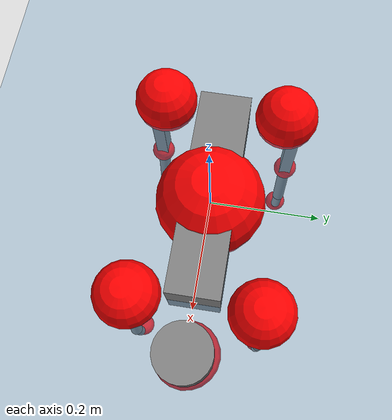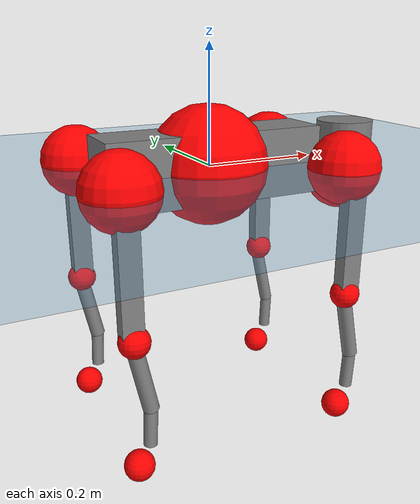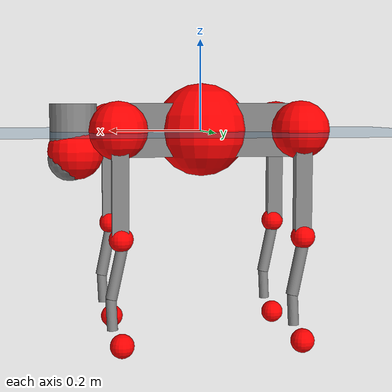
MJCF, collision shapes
<mujoco model="go2">
  <compiler angle="radian" assetdir="assets" balanceinertia="true" inertiafromgeom="false"/>

  <option timestep="0.005" density="1.2" viscosity="2e-05"/>

  <size nkey="1"/>

  <visual>
    <quality shadowsize="8192"/>
    <map shadowclip="0.5"/>
  </visual>

  <default>
    <default class="/">
      <geom contype="0" conaffinity="0" group="1" solref="-1000 -80"/>
      <site size="0.01 0.005 0.005" group="5"/>
      <general forcelimited="true" biastype="affine" gainprm="20" biasprm="0 -20 -0.5"/>
      <default class="go2">
        <joint armature="0.01" damping="0.01" frictionloss="0.2"/>
        <geom condim="1" margin="0.001"/>
        <default class="visual">
          <geom type="mesh" group="2"/>
        </default>
        <default class="collision">
          <geom group="3"/>
          <default class="foot">
            <geom size="0.022 0 0" condim="6" priority="1" friction="0.8 0.02 0.01" solimp="0.015 1 0.022"/>
          </default>
        </default>
        <default class="reward_collision_sphere">
          <geom group="5" rgba="1 0 0 1"/>
        </default>
      </default>
    </default>
  </default>

  <asset>
    <texture type="skybox" colorspace="auto" name="//unnamed_texture_0" builtin="gradient" rgb1="0.95 0.95 0.95" rgb2="0.95 0.95 0.95" width="100" height="600"/>
    <texture type="2d" colorspace="auto" name="texplane" builtin="checker" rgb1="0.345 0.575 0.748" rgb2="0.345 0.575 0.748" markrgb="1 1 1" width="512" height="512"/>
    <material name="MatPlane" class="/" texture="texplane" texuniform="true" texrepeat="2 2" specular="0.9"/>
    <material name="metal" class="/" rgba="0.9 0.95 0.95 1"/>
    <material name="black" class="/" rgba="0 0 0 1"/>
    <material name="white" class="/"/>
    <material name="gray" class="/" rgba="0.671705 0.692426 0.77427 1"/>
    <mesh name="base_0" class="/" file="base_0.obj"/>
    <mesh name="base_1" class="/" file="base_1.obj"/>
    <mesh name="base_2" class="/" file="base_2.obj"/>
    <mesh name="base_3" class="/" file="base_3.obj"/>
    <mesh name="base_4" class="/" file="base_4.obj"/>
    <mesh name="hip_0" class="/" file="hip_0.obj"/>
    <mesh name="hip_1" class="/" file="hip_1.obj"/>
    <mesh name="thigh_0" class="/" file="thigh_0.obj"/>
    <mesh name="thigh_1" class="/" file="thigh_1.obj"/>
    <mesh name="thigh_mirror_0" class="/" file="thigh_mirror_0.obj"/>
    <mesh name="thigh_mirror_1" class="/" file="thigh_mirror_1.obj"/>
    <mesh name="calf_0" class="/" file="calf_0.obj"/>
    <mesh name="calf_1" class="/" file="calf_1.obj"/>
    <mesh name="calf_mirror_0" class="/" file="calf_mirror_0.obj"/>
    <mesh name="calf_mirror_1" class="/" file="calf_mirror_1.obj"/>
    <mesh name="foot" class="/" file="foot.obj"/>
  </asset>

  <worldbody>
    <geom name="floor" class="/" size="100 100 0.125" type="plane" group="0" material="MatPlane"/>
    <light name="toplight_shadow" class="/" pos="0 0 5" dir="0.0990148 0.0990148 -0.990148" type="directional" ambient="0.04 0.04 0.04" diffuse="0.55 0.55 0.55" specular="0.12 0.12 0.12"/>
    <light name="toplight_fill" class="/" pos="0 0 5" dir="0.0990148 0.0990148 -0.990148" type="directional" castshadow="false" ambient="0.04 0.04 0.04" diffuse="0.3 0.3 0.3" specular="0.08 0.08 0.08"/>
    <body name="trunk" childclass="go2" pos="-0.00258079 -0.0002914 0.00243966" quat="1 0.000117375 -0.000610794 0.0007656">
      <inertial pos="0.0253997 0.00176593 -0.00785127" quat="-0.0064768 0.718293 -0.0102565 0.695635" mass="7.12151" diaginertia="0.100368 0.116074 0.0317565"/>
      <joint name="//unnamed_joint_0" type="free" armature="0" damping="0" frictionloss="0"/>
      <geom name="//unnamed_geom_1" class="visual" material="black" mesh="base_0"/>
      <geom name="//unnamed_geom_2" class="visual" material="black" mesh="base_1"/>
      <geom name="//unnamed_geom_3" class="visual" material="black" mesh="base_2"/>
      <geom name="//unnamed_geom_4" class="visual" material="white" mesh="base_3"/>
      <geom name="//unnamed_geom_5" class="visual" material="gray" mesh="base_4"/>
      <geom name="trunk_1" class="collision" size="0.192096 0.0477431 0.0582109" type="box"/>
      <geom name="trunk_2" class="collision" size="0.0510622 0.0459559" pos="0.281315 0 0.0104581" type="cylinder"/>
      <geom name="trunk_3" class="collision" size="0.0479984" pos="0.289211 0 -0.0627485"/>
      <geom name="//unnamed_geom_9" class="reward_collision_sphere" size="0.102124"/>
      <geom name="//unnamed_geom_10" class="reward_collision_sphere" size="0.0612746" pos="0.27638 0 -0.0470614"/>
      <site name="imu" pos="-0.0396722 -0.00109228 0.0584463" size="0.0102124"/>
      <camera name="track" pos="0 -2.0617 0" quat="0.707107 0.707107 0 0" mode="trackcom"/>
      <camera name="ego_camera" pos="0.307966 0 0.0470614" quat="-0.5 -0.5 0.5 0.5"/>
      <body name="FL_hip" pos="0.191403 0.0491799 0.000888164" quat="1 -0.000828178 -0.000388092 -0.000271592">
        <inertial pos="-0.00507713 0.00253865 -0.000866447" quat="0.496205 0.500505 0.505632 0.497606" mass="0.778737" diaginertia="0.000867713 0.000744377 0.000635239"/>
        <joint name="FL_hip_joint" pos="0 0 0" axis="0.999957 0.00898838 0.00220803" range="-1.04894 1.09059" armature="0.0102105" damping="0.0130498" frictionloss="0.200806"/>
        <geom name="//unnamed_geom_11" class="visual" material="metal" mesh="hip_0"/>
        <geom name="//unnamed_geom_12" class="visual" material="gray" mesh="hip_1"/>
        <geom name="//unnamed_geom_13" class="collision" size="0.0469772 0.0204249" pos="0 0.0824681 0" quat="0.707107 0.707107 0 0" type="cylinder"/>
        <geom name="//unnamed_geom_14" class="reward_collision_sphere" size="0.0612746" pos="0 0.0721596 0"/>
        <body name="FL_thigh" pos="-0.00140268 0.0948896 0.00102056" quat="0.999999 -0.000620692 -0.000308725 -0.0010303">
          <inertial pos="-0.00374817 -0.0232723 -0.0328801" quat="0.829526 0.0836599 -0.0164707 0.55192" mass="1.20976" diaginertia="0.00547611 0.00704298 0.00111894"/>
          <joint name="FL_thigh_joint" pos="0 0 0" axis="-0.0056655 0.999946 -0.00871002" range="-1.6111 3.49882" armature="0.0089119" damping="0.00443975" frictionloss="0.192319"/>
          <geom name="//unnamed_geom_15" class="visual" material="metal" mesh="thigh_0"/>
          <geom name="//unnamed_geom_16" class="visual" material="gray" mesh="thigh_1"/>
          <geom name="//unnamed_geom_17" class="collision" size="0.108762 0.0125102 0.0173611" pos="0 0 -0.111379" quat="0.707107 0 0.707107 0" type="box"/>
          <body name="FL_calf" pos="-0.0019721 -0.00222864 -0.224276" quat="0.999999 -0.000646201 -0.000928067 0.000394793">
            <inertial pos="0.0070388 0.00194373 -0.149332" quat="0.710527 0.00390736 -0.00677647 0.703626" mass="0.247205" diaginertia="0.00138049 0.0016822 6.65834e-05"/>
            <joint name="FL_calf_joint" pos="0 0 0" axis="0.00233858 0.999995 -0.00203657" stiffness="0.00905058" range="-2.71313 -0.853344" armature="0.0113838" damping="0.00689485" frictionloss="0.196425"/>
            <geom name="//unnamed_geom_18" class="visual" material="gray" mesh="calf_0"/>
            <geom name="//unnamed_geom_19" class="visual" material="black" mesh="calf_1"/>
            <geom name="FL_calf0" class="collision" size="0.0122549 0.0612746" pos="0.00789656 0 -0.0627485" quat="0.994493 0 -0.104807 0" type="cylinder"/>
            <geom name="//unnamed_geom_21" class="collision" size="0.0112337 0.0331904" pos="0.0197414 0 -0.15478" quat="0.999688 0 0.0249974 0" type="cylinder"/>
            <geom name="//unnamed_geom_22" class="visual" pos="0 0 -0.222757" quat="1 0 0 0" material="black" mesh="foot"/>
            <geom name="FL_foot" class="foot" size="0.0197003" pos="-0.00197414 0 -0.222757"/>
            <geom name="//unnamed_geom_24" class="reward_collision_sphere" size="0.0255311"/>
            <geom name="//unnamed_geom_25" class="reward_collision_sphere" size="0.0255311" pos="-0.00197414 0 -0.222757"/>
            <site name="FL_foot" class="foot" pos="-0.00197414 0 -0.222757" size="0.0102124"/>
          </body>
        </body>
      </body>
      <body name="FR_hip" pos="0.194078 -0.0462038 -0.00198852" quat="1 6.01037e-05 0.000516724 0.000226431">
        <inertial pos="-0.00597975 0.00294749 -0.000707815" quat="0.483771 0.502868 0.504165 0.508829" mass="0.733513" diaginertia="0.000860996 0.0006882 0.000620538"/>
        <joint name="FR_hip_joint" pos="0 0 0" axis="0.999978 -0.00155165 0.00643971" stiffness="0.0125815" range="-1.00347 1.07054" armature="0.00953247" damping="0.0132233" frictionloss="0.228451"/>
        <geom name="//unnamed_geom_26" class="visual" pos="0 -1.30307e-10 -5.58915e-09" quat="4.63268e-05 1 0 0" material="metal" mesh="hip_0"/>
        <geom name="//unnamed_geom_27" class="visual" pos="0 -2.11244e-10 1.38241e-08" quat="4.63268e-05 1 0 0" material="gray" mesh="hip_1"/>
        <geom name="//unnamed_geom_28" class="collision" size="0.0469772 0.0204249" pos="0 -0.0824681 0" quat="0.707107 0.707107 0 0" type="cylinder"/>
        <geom name="//unnamed_geom_29" class="reward_collision_sphere" size="0.0612746" pos="0 -0.0721596 0"/>
        <body name="FR_thigh" pos="0.00134515 -0.0992934 0.00237115" quat="1 -0.000225806 4.80384e-05 -0.00081177">
          <inertial pos="-0.00687964 0.0205861 -0.0352728" quat="0.554225 -0.018205 0.0880277 0.827499" mass="1.1785" diaginertia="0.00536669 0.00671535 0.00102786"/>
          <joint name="FR_thigh_joint" pos="0 0 0" axis="0.00499361 -0.999962 -0.00717237" stiffness="0.000953773" range="-3.44236 1.5187" armature="0.00997658" damping="0.00838042" frictionloss="0.226108"/>
          <geom name="//unnamed_geom_30" class="visual" material="metal" mesh="thigh_mirror_0"/>
          <geom name="//unnamed_geom_31" class="visual" material="gray" mesh="thigh_mirror_1"/>
          <geom name="//unnamed_geom_32" class="collision" size="0.108762 0.0125102 0.0173611" pos="0 0 -0.111379" quat="0.707107 0 0.707107 0" type="box"/>
          <body name="FR_calf" pos="-0.001339 0.000937175 -0.220871" quat="1 -0.000445261 0.000289833 -7.50207e-05">
            <inertial pos="0.00683904 0.000654033 -0.148007" quat="0.693039 -0.0161927 0.00268553 0.720713" mass="0.257738" diaginertia="0.00141935 0.00164584 6.51799e-05"/>
            <joint name="FR_calf_joint" pos="0 0 0" axis="0.00658097 -0.999972 -0.00363889" stiffness="0.0136665" range="0.900433 2.70145" armature="0.00966836" damping="0" frictionloss="0.224295"/>
            <geom name="//unnamed_geom_33" class="visual" material="gray" mesh="calf_mirror_0"/>
            <geom name="//unnamed_geom_34" class="visual" material="black" mesh="calf_mirror_1"/>
            <geom name="FR_calf0" class="collision" size="0.0132762 0.0612746" pos="0.0098707 0 -0.0627485" quat="0.995004 0 -0.0998334 0" type="cylinder"/>
            <geom name="//unnamed_geom_36" class="collision" size="0.0112337 0.0331904" pos="0.0197414 0 -0.15478" quat="0.999688 0 0.0249974 0" type="cylinder"/>
            <geom name="//unnamed_geom_37" class="visual" pos="0 0 -0.222757" quat="1 0 0 0" material="black" mesh="foot"/>
            <geom name="FR_foot" class="foot" size="0.0237123" pos="-0.00197414 0 -0.222757"/>
            <geom name="//unnamed_geom_39" class="reward_collision_sphere" size="0.0255311"/>
            <geom name="//unnamed_geom_40" class="reward_collision_sphere" size="0.0255311" pos="-0.00197414 0 -0.222757"/>
            <site name="FR_foot" class="foot" pos="-0.00197414 0 -0.222757" size="0.0102124"/>
          </body>
        </body>
      </body>
      <body name="RL_hip" pos="-0.192935 0.0475581 0.00234837" quat="1 -0.000103305 9.70056e-05 -2.80657e-05">
        <inertial pos="0.00496716 0.0023985 0.00440703" quat="0.503102 0.495792 0.498855 0.502218" mass="0.690944" diaginertia="0.000746326 0.000645014 0.000566263"/>
        <joint name="RL_hip_joint" pos="0 0 0" axis="-0.999973 -0.00117281 0.00729937" range="-1.03039 1.09381" armature="0.00943924" damping="0.0230256" frictionloss="0.201236"/>
        <geom name="//unnamed_geom_41" class="visual" pos="5.11711e-10 0 1.00307e-07" quat="4.63268e-05 0 1 0" material="metal" mesh="hip_0"/>
        <geom name="//unnamed_geom_42" class="visual" pos="8.29545e-10 0 8.89582e-08" quat="4.63268e-05 0 1 0" material="gray" mesh="hip_1"/>
        <geom name="//unnamed_geom_43" class="collision" size="0.0469772 0.0204249" pos="0 0.0824681 0" quat="0.707107 0.707107 0 0" type="cylinder"/>
        <geom name="//unnamed_geom_44" class="reward_collision_sphere" size="0.0612746" pos="0 0.0721596 0"/>
        <body name="RL_thigh" pos="0.000334694 0.0955316 0.000763017" quat="0.999999 -0.000832838 -0.000392321 -0.000685967">
          <inertial pos="0.000939891 -0.0203209 -0.0307017" quat="0.830113 0.087527 -0.0170808 0.550417" mass="1.19313" diaginertia="0.00586163 0.00680208 0.00113152"/>
          <joint name="RL_thigh_joint" pos="0 0 0" axis="0.0197799 0.999799 -0.00335965" range="-0.55424 4.53074" armature="0.0114636" damping="0.0113453" frictionloss="0.20244"/>
          <geom name="//unnamed_geom_45" class="visual" material="metal" mesh="thigh_0"/>
          <geom name="//unnamed_geom_46" class="visual" material="gray" mesh="thigh_1"/>
          <geom name="//unnamed_geom_47" class="collision" size="0.108762 0.0125102 0.0173611" pos="0 0 -0.111379" quat="0.707107 0 0.707107 0" type="box"/>
          <body name="RL_calf" pos="-0.00169767 0.000896495 -0.225123" quat="1 3.20324e-05 -5.17433e-05 -0.000134445">
            <inertial pos="0.00770503 -0.00277498 -0.150472" quat="0.709123 0.00179334 -0.00720995 0.705045" mass="0.240873" diaginertia="0.00130862 0.00156539 6.45165e-05"/>
            <joint name="RL_calf_joint" pos="0 0 0" axis="-0.00924753 0.999938 0.00627092" stiffness="0.00755116" range="-2.75854 -0.837366" armature="0.00870559" damping="0" frictionloss="0.217884"/>
            <geom name="//unnamed_geom_48" class="visual" material="gray" mesh="calf_0"/>
            <geom name="//unnamed_geom_49" class="visual" material="black" mesh="calf_1"/>
            <geom name="RL_calf0" class="collision" size="0.0132762 0.0612746" pos="0.0098707 0 -0.0627485" quat="0.995004 0 -0.0998334 0" type="cylinder"/>
            <geom name="//unnamed_geom_51" class="collision" size="0.0112337 0.0331904" pos="0.0197414 0 -0.15478" quat="0.999688 0 0.0249974 0" type="cylinder"/>
            <geom name="//unnamed_geom_52" class="visual" pos="0 0 -0.222757" quat="1 0 0 0" material="black" mesh="foot"/>
            <geom name="RL_foot" class="foot" size="0.0209838" pos="-0.00197414 0 -0.222757"/>
            <geom name="//unnamed_geom_54" class="reward_collision_sphere" size="0.0255311"/>
            <geom name="//unnamed_geom_55" class="reward_collision_sphere" size="0.0255311" pos="-0.00197414 0 -0.222757"/>
            <site name="RL_foot" class="foot" pos="-0.00197414 0 -0.222757" size="0.0102124"/>
          </body>
        </body>
      </body>
      <body name="RR_hip" pos="-0.195517 -0.046774 0.00241711" quat="0.999999 -0.000187179 -0.00106129 0.000117592">
        <inertial pos="0.00438751 -0.000571969 0.00322276" quat="0.490081 0.496367 0.518439 0.494633" mass="0.748333" diaginertia="0.00087168 0.000724025 0.000631489"/>
        <joint name="RR_hip_joint" pos="0 0 0" axis="-0.999908 -0.0127395 0.00474174" range="-1.00234 1.07816" armature="0.00903288" damping="0.00292603" frictionloss="0.207915"/>
        <geom name="//unnamed_geom_56" class="visual" pos="-5.10196e-10 -1.30307e-10 1.05896e-07" quat="2.14617e-09 4.63268e-05 4.63268e-05 -1" material="metal" mesh="hip_0"/>
        <geom name="//unnamed_geom_57" class="visual" pos="-8.33294e-10 -2.11244e-10 7.51341e-08" quat="2.14617e-09 4.63268e-05 4.63268e-05 -1" material="gray" mesh="hip_1"/>
        <geom name="//unnamed_geom_58" class="collision" size="0.0469772 0.0204249" pos="0 -0.0824681 0" quat="0.707107 0.707107 0 0" type="cylinder"/>
        <geom name="//unnamed_geom_59" class="reward_collision_sphere" size="0.0612746" pos="0 -0.0721596 0"/>
        <body name="RR_thigh" pos="-0.00363371 -0.0969452 0.00262236" quat="1 0.000673387 0.00011574 -0.000627297">
          <inertial pos="-0.00404173 0.0240846 -0.0316109" quat="0.55116 -0.0201775 0.0856448 0.829747" mass="1.22376" diaginertia="0.00556564 0.00665495 0.00106563"/>
          <joint name="RR_thigh_joint" pos="0 0 0" axis="-0.00225233 -0.999949 -0.00982232" range="-4.51823 0.472506" armature="0.00906164" damping="0.0164184" frictionloss="0.212057"/>
          <geom name="//unnamed_geom_60" class="visual" material="metal" mesh="thigh_mirror_0"/>
          <geom name="//unnamed_geom_61" class="visual" material="gray" mesh="thigh_mirror_1"/>
          <geom name="//unnamed_geom_62" class="collision" size="0.108762 0.0125102 0.0173611" pos="0 0 -0.111379" quat="0.707107 0 0.707107 0" type="box"/>
          <body name="RR_calf" pos="0.00326958 -0.00205188 -0.226075" quat="0.999999 0.000773493 -0.000646129 0.0011052">
            <inertial pos="0.00501924 -0.00121491 -0.14544" quat="0.705285 -0.00265374 0.00247769 0.708915" mass="0.25063" diaginertia="0.00137499 0.00170112 6.48636e-05"/>
            <joint name="RR_calf_joint" pos="0 0 0" axis="0.00958496 -0.99995 -0.00275247" stiffness="0.00851245" range="0.827232 2.67415" armature="0.0103013" damping="0" frictionloss="0.224528"/>
            <geom name="//unnamed_geom_63" class="visual" material="gray" mesh="calf_mirror_0"/>
            <geom name="//unnamed_geom_64" class="visual" material="black" mesh="calf_mirror_1"/>
            <geom name="RR_calf0" class="collision" size="0.0132762 0.0612746" pos="0.0098707 0 -0.0627485" quat="0.995004 0 -0.0998334 0" type="cylinder"/>
            <geom name="//unnamed_geom_66" class="collision" size="0.0112337 0.0331904" pos="0.0197414 0 -0.15478" quat="0.999688 0 0.0249974 0" type="cylinder"/>
            <geom name="//unnamed_geom_67" class="visual" pos="0 0 -0.222757" quat="1 0 0 0" material="black" mesh="foot"/>
            <geom name="RR_foot" class="foot" size="0.0226444" pos="-0.00197414 0 -0.222757"/>
            <geom name="//unnamed_geom_69" class="reward_collision_sphere" size="0.0255311"/>
            <geom name="//unnamed_geom_70" class="reward_collision_sphere" size="0.0255311" pos="-0.00197414 0 -0.222757"/>
            <site name="RR_foot" class="foot" pos="-0.00197414 0 -0.222757" size="0.0102124"/>
          </body>
        </body>
      </body>
    </body>
  </worldbody>

  <contact>
    <pair class="/" geom1="floor" geom2="FL_foot" name="//unnamed_contact_0"/>
    <pair class="/" geom1="floor" geom2="FR_foot" name="//unnamed_contact_1"/>
    <pair class="/" geom1="floor" geom2="RL_foot" name="//unnamed_contact_2"/>
    <pair class="/" geom1="floor" geom2="RR_foot" name="//unnamed_contact_3"/>
  </contact>

  <actuator>
    <general name="FL_hip" class="/" joint="FL_hip_joint" forcerange="-24.8884 24.8884" gainprm="19.8745" biasprm="0 -19.8745 -0.495357"/>
    <general name="FL_thigh" class="/" joint="FL_thigh_joint" forcerange="-27.2675 27.2675" gainprm="19.8745" biasprm="0 -19.8745 -0.495357"/>
    <general name="FL_calf" class="/" joint="FL_calf_joint" forcerange="-42.0563 42.0563" gainprm="19.8745" biasprm="0 -19.8745 -0.495357"/>
    <general name="FR_hip" class="/" joint="FR_hip_joint" forcerange="-23.7518 23.7518" gainprm="19.8745" biasprm="0 -19.8745 -0.495357"/>
    <general name="FR_thigh" class="/" joint="FR_thigh_joint" forcerange="-24.1743 24.1743" gainprm="19.8745" biasprm="0 -19.8745 -0.495357"/>
    <general name="FR_calf" class="/" joint="FR_calf_joint" forcerange="-42.0574 42.0574" gainprm="19.8745" biasprm="0 -19.8745 -0.495357"/>
    <general name="RL_hip" class="/" joint="RL_hip_joint" forcerange="-24.8883 24.8883" gainprm="19.8745" biasprm="0 -19.8745 -0.495357"/>
    <general name="RL_thigh" class="/" joint="RL_thigh_joint" forcerange="-24.4979 24.4979" gainprm="19.8745" biasprm="0 -19.8745 -0.495357"/>
    <general name="RL_calf" class="/" joint="RL_calf_joint" forcerange="-50.4474 50.4474" gainprm="19.8745" biasprm="0 -19.8745 -0.495357"/>
    <general name="RR_hip" class="/" joint="RR_hip_joint" forcerange="-22.5322 22.5322" gainprm="19.8745" biasprm="0 -19.8745 -0.495357"/>
    <general name="RR_thigh" class="/" joint="RR_thigh_joint" forcerange="-22.5685 22.5685" gainprm="19.8745" biasprm="0 -19.8745 -0.495357"/>
    <general name="RR_calf" class="/" joint="RR_calf_joint" forcerange="-51.2437 51.2437" gainprm="19.8745" biasprm="0 -19.8745 -0.495357"/>
  </actuator>

  <sensor>
    <gyro site="imu" name="imu_angular_velocity"/>
    <velocimeter site="imu" name="imu_linear_velocity"/>
    <framelinvel objtype="site" objname="FL_foot" name="FL_foot_global_linear_velocity"/>
    <framelinvel objtype="site" objname="FR_foot" name="FR_foot_global_linear_velocity"/>
    <framelinvel objtype="site" objname="RL_foot" name="RL_foot_global_linear_velocity"/>
    <framelinvel objtype="site" objname="RR_foot" name="RR_foot_global_linear_velocity"/>
  </sensor>

  <keyframe>
    <key name="home" qpos="0 0 0.325 1 0 0 0 0.1 0.8 -1.5 -0.1 -0.8 1.5 -0.1 0.8 -1.5 0.1 -0.8 1.5"/>
  </keyframe>
</mujoco>
